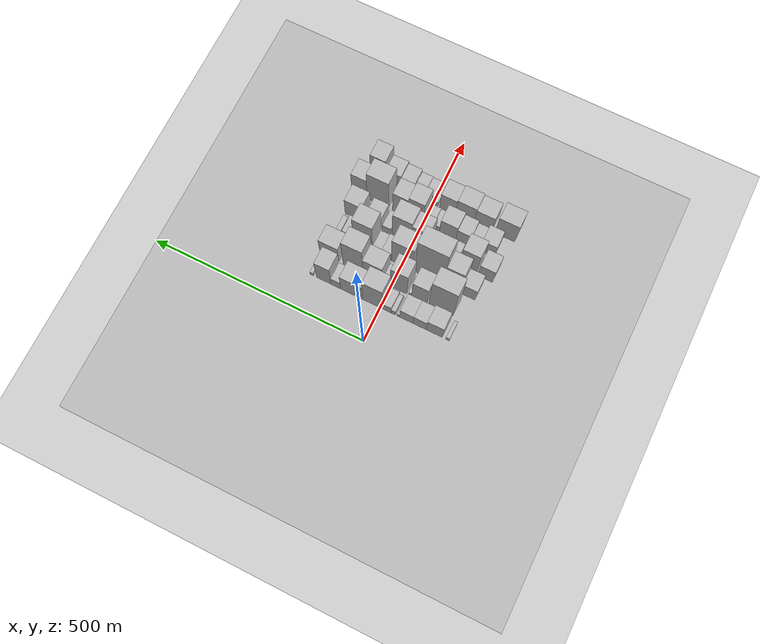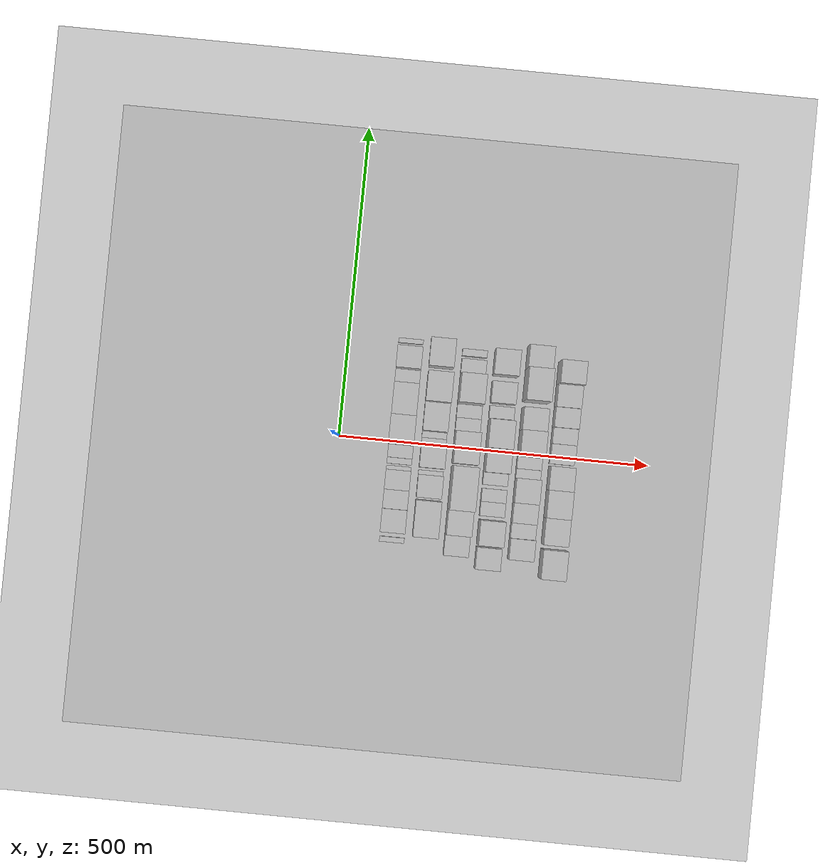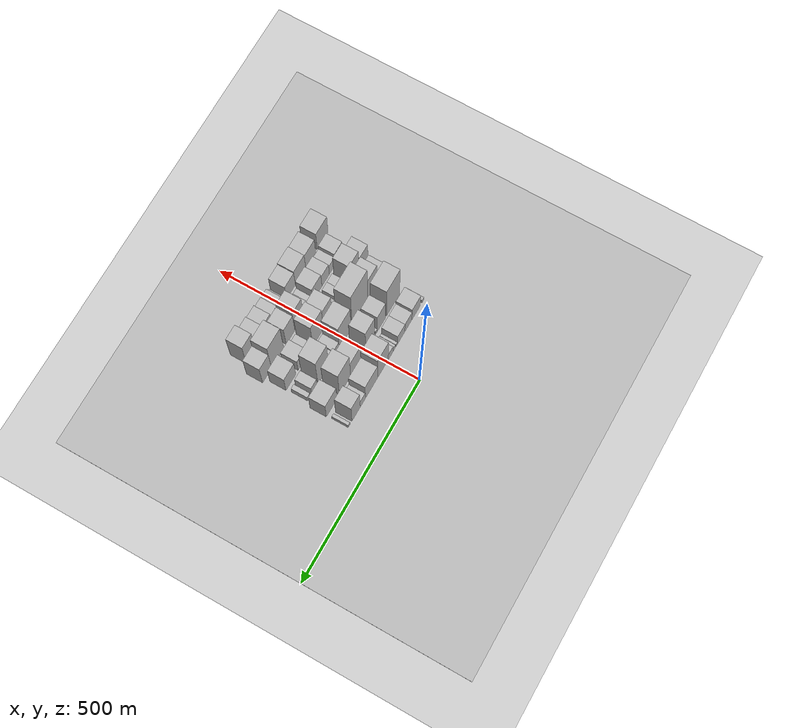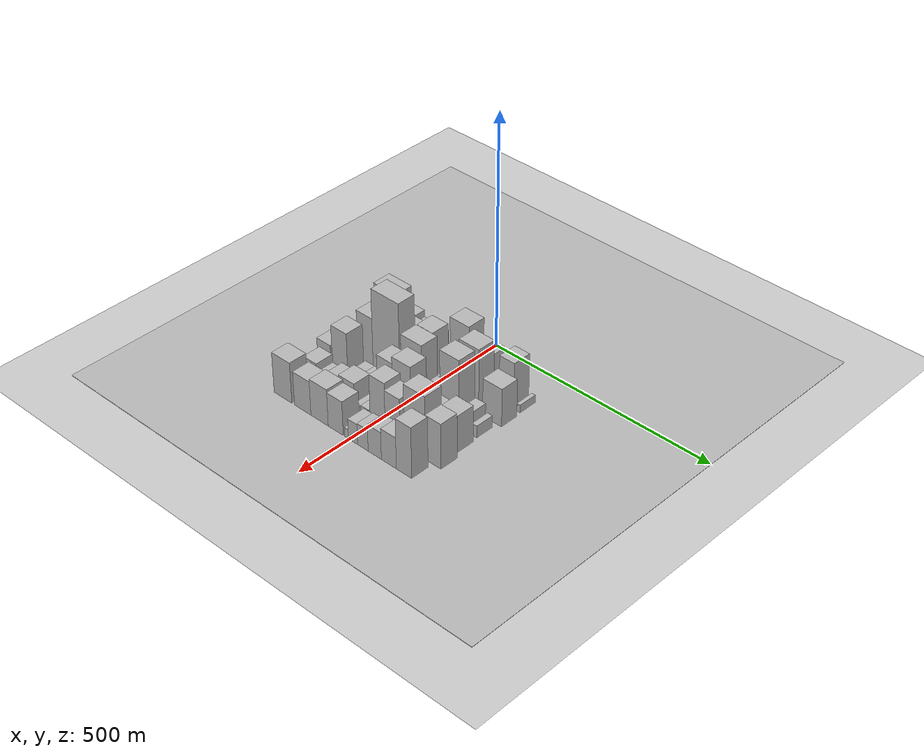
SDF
<sdf version="1.6">
 <world name="default">
  <include><name>ground_plane_1</name><uri>model://HANNAS_ground_plane</uri></include>
  <include>
   <name>ground_plane_2</name>
   <uri>model://HANNAS_ground_plane</uri>
   <pose>100 0 0  0 0 0</pose>
  </include>
  <model name="building_22">
   <static>1</static>
   <pose>100.0000 -157.7636 0 0.000000 0.000000 0.000000</pose>
   <link name="link">
    <pose>0 0 9.00 0 0 0</pose>
    <collision name="collision"><geometry><box><size>40.0000 8.4137 18.0000</size></box></geometry></collision>
    <visual name="visual">
     <cast_shadows>0</cast_shadows>
     <geometry><box><size>40.0000 8.4137 18.0000</size></box></geometry>
     <material>
      <script>
       <uri>model://HANNAS_wall/materials/scripts</uri>
       <uri>model://HANNAS_wall/materials/textures</uri>
       <name>vrc/HANNAS_wall</name>
      </script>
     </material>
    </visual>
   </link>
  </model>
  <model name="building_23">
   <static>1</static>
   <pose>100.0000 -126.8365 0 0.000000 0.000000 0.000000</pose>
   <link name="link">
    <pose>0 0 34.50 0 0 0</pose>
    <collision name="collision"><geometry><box><size>40.0000 37.4404 69.0000</size></box></geometry></collision>
    <visual name="visual">
     <cast_shadows>0</cast_shadows>
     <geometry><box><size>40.0000 37.4404 69.0000</size></box></geometry>
     <material>
      <script>
       <uri>model://HANNAS_wall/materials/scripts</uri>
       <uri>model://HANNAS_wall/materials/textures</uri>
       <name>vrc/HANNAS_wall</name>
      </script>
     </material>
    </visual>
   </link>
  </model>
  <model name="building_24">
   <static>1</static>
   <pose>100.0000 -92.8020 0 0.000000 0.000000 0.000000</pose>
   <link name="link">
    <pose>0 0 27.00 0 0 0</pose>
    <collision name="collision"><geometry><box><size>40.0000 30.6288 54.0000</size></box></geometry></collision>
    <visual name="visual">
     <cast_shadows>0</cast_shadows>
     <geometry><box><size>40.0000 30.6288 54.0000</size></box></geometry>
     <material>
      <script>
       <uri>model://HANNAS_wall/materials/scripts</uri>
       <uri>model://HANNAS_wall/materials/textures</uri>
       <name>vrc/HANNAS_wall</name>
      </script>
     </material>
    </visual>
   </link>
  </model>
  <model name="building_25">
   <static>1</static>
   <pose>100.0000 -61.5863 0 0.000000 0.000000 0.000000</pose>
   <link name="link">
    <pose>0 0 27.00 0 0 0</pose>
    <collision name="collision"><geometry><box><size>40.0000 31.8025 54.0000</size></box></geometry></collision>
    <visual name="visual">
     <cast_shadows>0</cast_shadows>
     <geometry><box><size>40.0000 31.8025 54.0000</size></box></geometry>
     <material>
      <script>
       <uri>model://HANNAS_wall/materials/scripts</uri>
       <uri>model://HANNAS_wall/materials/textures</uri>
       <name>vrc/HANNAS_wall</name>
      </script>
     </material>
    </visual>
   </link>
  </model>
  <model name="building_26">
   <static>1</static>
   <pose>100.0000 -42.3465 0 0.000000 0.000000 0.000000</pose>
   <link name="link">
    <pose>0 0 7.50 0 0 0</pose>
    <collision name="collision"><geometry><box><size>40.0000 6.6771 15.0000</size></box></geometry></collision>
    <visual name="visual">
     <cast_shadows>0</cast_shadows>
     <geometry><box><size>40.0000 6.6771 15.0000</size></box></geometry>
     <material>
      <script>
       <uri>model://HANNAS_wall/materials/scripts</uri>
       <uri>model://HANNAS_wall/materials/textures</uri>
       <name>vrc/HANNAS_wall</name>
      </script>
     </material>
    </visual>
   </link>
  </model>
  <model name="building_27">
   <static>1</static>
   <pose>100.0000 -31.0398 0 0.000000 0.000000 0.000000</pose>
   <link name="link">
    <pose>0 0 12.00 0 0 0</pose>
    <collision name="collision"><geometry><box><size>40.0000 9.9365 24.0000</size></box></geometry></collision>
    <visual name="visual">
     <cast_shadows>0</cast_shadows>
     <geometry><box><size>40.0000 9.9365 24.0000</size></box></geometry>
     <material>
      <script>
       <uri>model://HANNAS_wall/materials/scripts</uri>
       <uri>model://HANNAS_wall/materials/textures</uri>
       <name>vrc/HANNAS_wall</name>
      </script>
     </material>
    </visual>
   </link>
  </model>
  <model name="building_28">
   <static>1</static>
   <pose>100.0000 -15.5173 0 0.000000 0.000000 0.000000</pose>
   <link name="link">
    <pose>0 0 19.50 0 0 0</pose>
    <collision name="collision"><geometry><box><size>40.0000 21.1083 39.0000</size></box></geometry></collision>
    <visual name="visual">
     <cast_shadows>0</cast_shadows>
     <geometry><box><size>40.0000 21.1083 39.0000</size></box></geometry>
     <material>
      <script>
       <uri>model://HANNAS_wall/materials/scripts</uri>
       <uri>model://HANNAS_wall/materials/textures</uri>
       <name>vrc/HANNAS_wall</name>
      </script>
     </material>
    </visual>
   </link>
  </model>
  <model name="building_29">
   <static>1</static>
   <pose>100.0000 18.2256 0 0.000000 0.000000 0.000000</pose>
   <link name="link">
    <pose>0 0 63.00 0 0 0</pose>
    <collision name="collision"><geometry><box><size>40.0000 46.3776 126.0000</size></box></geometry></collision>
    <visual name="visual">
     <cast_shadows>0</cast_shadows>
     <geometry><box><size>40.0000 46.3776 126.0000</size></box></geometry>
     <material>
      <script>
       <uri>model://HANNAS_wall/materials/scripts</uri>
       <uri>model://HANNAS_wall/materials/textures</uri>
       <name>vrc/HANNAS_wall</name>
      </script>
     </material>
    </visual>
   </link>
  </model>
  <model name="building_30">
   <static>1</static>
   <pose>100.0000 67.4377 0 0.000000 0.000000 0.000000</pose>
   <link name="link">
    <pose>0 0 43.50 0 0 0</pose>
    <collision name="collision"><geometry><box><size>40.0000 52.0465 87.0000</size></box></geometry></collision>
    <visual name="visual">
     <cast_shadows>0</cast_shadows>
     <geometry><box><size>40.0000 52.0465 87.0000</size></box></geometry>
     <material>
      <script>
       <uri>model://HANNAS_wall/materials/scripts</uri>
       <uri>model://HANNAS_wall/materials/textures</uri>
       <name>vrc/HANNAS_wall</name>
      </script>
     </material>
    </visual>
   </link>
  </model>
  <model name="building_31">
   <static>1</static>
   <pose>100.0000 104.6148 0 0.000000 0.000000 0.000000</pose>
   <link name="link">
    <pose>0 0 21.00 0 0 0</pose>
    <collision name="collision"><geometry><box><size>40.0000 22.3077 42.0000</size></box></geometry></collision>
    <visual name="visual">
     <cast_shadows>0</cast_shadows>
     <geometry><box><size>40.0000 22.3077 42.0000</size></box></geometry>
     <material>
      <script>
       <uri>model://HANNAS_wall/materials/scripts</uri>
       <uri>model://HANNAS_wall/materials/textures</uri>
       <name>vrc/HANNAS_wall</name>
      </script>
     </material>
    </visual>
   </link>
  </model>
  <model name="building_32">
   <static>1</static>
   <pose>100.0000 133.3518 0 0.000000 0.000000 0.000000</pose>
   <link name="link">
    <pose>0 0 51.00 0 0 0</pose>
    <collision name="collision"><geometry><box><size>40.0000 35.1663 102.0000</size></box></geometry></collision>
    <visual name="visual">
     <cast_shadows>0</cast_shadows>
     <geometry><box><size>40.0000 35.1663 102.0000</size></box></geometry>
     <material>
      <script>
       <uri>model://HANNAS_wall/materials/scripts</uri>
       <uri>model://HANNAS_wall/materials/textures</uri>
       <name>vrc/HANNAS_wall</name>
      </script>
     </material>
    </visual>
   </link>
  </model>
  <model name="building_33">
   <static>1</static>
   <pose>100.0000 162.8169 0 0.000000 0.000000 0.000000</pose>
   <link name="link">
    <pose>0 0 9.00 0 0 0</pose>
    <collision name="collision"><geometry><box><size>40.0000 7.7639 18.0000</size></box></geometry></collision>
    <visual name="visual">
     <cast_shadows>0</cast_shadows>
     <geometry><box><size>40.0000 7.7639 18.0000</size></box></geometry>
     <material>
      <script>
       <uri>model://HANNAS_wall/materials/scripts</uri>
       <uri>model://HANNAS_wall/materials/textures</uri>
       <name>vrc/HANNAS_wall</name>
      </script>
     </material>
    </visual>
   </link>
  </model>
  <model name="building_72">
   <static>1</static>
   <pose>152.0000 -117.4777 0 0.000000 0.000000 0.000000</pose>
   <link name="link">
    <pose>0 0 79.50 0 0 0</pose>
    <collision name="collision"><geometry><box><size>40.0000 57.0901 159.0000</size></box></geometry></collision>
    <visual name="visual">
     <cast_shadows>0</cast_shadows>
     <geometry><box><size>40.0000 57.0901 159.0000</size></box></geometry>
     <material>
      <script>
       <uri>model://HANNAS_wall/materials/scripts</uri>
       <uri>model://HANNAS_wall/materials/textures</uri>
       <name>vrc/HANNAS_wall</name>
      </script>
     </material>
    </visual>
   </link>
  </model>
  <model name="building_73">
   <static>1</static>
   <pose>152.0000 -66.9341 0 0.000000 0.000000 0.000000</pose>
   <link name="link">
    <pose>0 0 48.00 0 0 0</pose>
    <collision name="collision"><geometry><box><size>40.0000 35.9970 96.0000</size></box></geometry></collision>
    <visual name="visual">
     <cast_shadows>0</cast_shadows>
     <geometry><box><size>40.0000 35.9970 96.0000</size></box></geometry>
     <material>
      <script>
       <uri>model://HANNAS_wall/materials/scripts</uri>
       <uri>model://HANNAS_wall/materials/textures</uri>
       <name>vrc/HANNAS_wall</name>
      </script>
     </material>
    </visual>
   </link>
  </model>
  <model name="building_74">
   <static>1</static>
   <pose>152.0000 -45.2535 0 0.000000 0.000000 0.000000</pose>
   <link name="link">
    <pose>0 0 9.00 0 0 0</pose>
    <collision name="collision"><geometry><box><size>40.0000 7.3643 18.0000</size></box></geometry></collision>
    <visual name="visual">
     <cast_shadows>0</cast_shadows>
     <geometry><box><size>40.0000 7.3643 18.0000</size></box></geometry>
     <material>
      <script>
       <uri>model://HANNAS_wall/materials/scripts</uri>
       <uri>model://HANNAS_wall/materials/textures</uri>
       <name>vrc/HANNAS_wall</name>
      </script>
     </material>
    </visual>
   </link>
  </model>
  <model name="building_75">
   <static>1</static>
   <pose>152.0000 -18.0005 0 0.000000 0.000000 0.000000</pose>
   <link name="link">
    <pose>0 0 60.00 0 0 0</pose>
    <collision name="collision"><geometry><box><size>40.0000 39.1418 120.0000</size></box></geometry></collision>
    <visual name="visual">
     <cast_shadows>0</cast_shadows>
     <geometry><box><size>40.0000 39.1418 120.0000</size></box></geometry>
     <material>
      <script>
       <uri>model://HANNAS_wall/materials/scripts</uri>
       <uri>model://HANNAS_wall/materials/textures</uri>
       <name>vrc/HANNAS_wall</name>
      </script>
     </material>
    </visual>
   </link>
  </model>
  <model name="building_76">
   <static>1</static>
   <pose>152.0000 6.0870 0 0.000000 0.000000 0.000000</pose>
   <link name="link">
    <pose>0 0 10.50 0 0 0</pose>
    <collision name="collision"><geometry><box><size>40.0000 9.0332 21.0000</size></box></geometry></collision>
    <visual name="visual">
     <cast_shadows>0</cast_shadows>
     <geometry><box><size>40.0000 9.0332 21.0000</size></box></geometry>
     <material>
      <script>
       <uri>model://HANNAS_wall/materials/scripts</uri>
       <uri>model://HANNAS_wall/materials/textures</uri>
       <name>vrc/HANNAS_wall</name>
      </script>
     </material>
    </visual>
   </link>
  </model>
  <model name="building_77">
   <static>1</static>
   <pose>152.0000 15.8207 0 0.000000 0.000000 0.000000</pose>
   <link name="link">
    <pose>0 0 10.50 0 0 0</pose>
    <collision name="collision"><geometry><box><size>40.0000 10.4344 21.0000</size></box></geometry></collision>
    <visual name="visual">
     <cast_shadows>0</cast_shadows>
     <geometry><box><size>40.0000 10.4344 21.0000</size></box></geometry>
     <material>
      <script>
       <uri>model://HANNAS_wall/materials/scripts</uri>
       <uri>model://HANNAS_wall/materials/textures</uri>
       <name>vrc/HANNAS_wall</name>
      </script>
     </material>
    </visual>
   </link>
  </model>
  <model name="building_78">
   <static>1</static>
   <pose>152.0000 43.8010 0 0.000000 0.000000 0.000000</pose>
   <link name="link">
    <pose>0 0 45.00 0 0 0</pose>
    <collision name="collision"><geometry><box><size>40.0000 45.5261 90.0000</size></box></geometry></collision>
    <visual name="visual">
     <cast_shadows>0</cast_shadows>
     <geometry><box><size>40.0000 45.5261 90.0000</size></box></geometry>
     <material>
      <script>
       <uri>model://HANNAS_wall/materials/scripts</uri>
       <uri>model://HANNAS_wall/materials/textures</uri>
       <name>vrc/HANNAS_wall</name>
      </script>
     </material>
    </visual>
   </link>
  </model>
  <model name="building_79">
   <static>1</static>
   <pose>152.0000 90.3240 0 0.000000 0.000000 0.000000</pose>
   <link name="link">
    <pose>0 0 70.50 0 0 0</pose>
    <collision name="collision"><geometry><box><size>40.0000 47.5198 141.0000</size></box></geometry></collision>
    <visual name="visual">
     <cast_shadows>0</cast_shadows>
     <geometry><box><size>40.0000 47.5198 141.0000</size></box></geometry>
     <material>
      <script>
       <uri>model://HANNAS_wall/materials/scripts</uri>
       <uri>model://HANNAS_wall/materials/textures</uri>
       <name>vrc/HANNAS_wall</name>
      </script>
     </material>
    </visual>
   </link>
  </model>
  <model name="building_80">
   <static>1</static>
   <pose>152.0000 146.7472 0 0.000000 0.000000 0.000000</pose>
   <link name="link">
    <pose>0 0 42.00 0 0 0</pose>
    <collision name="collision"><geometry><box><size>40.0000 45.3268 84.0000</size></box></geometry></collision>
    <visual name="visual">
     <cast_shadows>0</cast_shadows>
     <geometry><box><size>40.0000 45.3268 84.0000</size></box></geometry>
     <material>
      <script>
       <uri>model://HANNAS_wall/materials/scripts</uri>
       <uri>model://HANNAS_wall/materials/textures</uri>
       <name>vrc/HANNAS_wall</name>
      </script>
     </material>
    </visual>
   </link>
  </model>
  <model name="building_122">
   <static>1</static>
   <pose>204.0000 -156.0463 0 0.000000 0.000000 0.000000</pose>
   <link name="link">
    <pose>0 0 31.50 0 0 0</pose>
    <collision name="collision"><geometry><box><size>40.0000 34.0928 63.0000</size></box></geometry></collision>
    <visual name="visual">
     <cast_shadows>0</cast_shadows>
     <geometry><box><size>40.0000 34.0928 63.0000</size></box></geometry>
     <material>
      <script>
       <uri>model://HANNAS_wall/materials/scripts</uri>
       <uri>model://HANNAS_wall/materials/textures</uri>
       <name>vrc/HANNAS_wall</name>
      </script>
     </material>
    </visual>
   </link>
  </model>
  <model name="building_123">
   <static>1</static>
   <pose>204.0000 -118.9184 0 0.000000 0.000000 0.000000</pose>
   <link name="link">
    <pose>0 0 64.50 0 0 0</pose>
    <collision name="collision"><geometry><box><size>40.0000 40.1630 129.0000</size></box></geometry></collision>
    <visual name="visual">
     <cast_shadows>0</cast_shadows>
     <geometry><box><size>40.0000 40.1630 129.0000</size></box></geometry>
     <material>
      <script>
       <uri>model://HANNAS_wall/materials/scripts</uri>
       <uri>model://HANNAS_wall/materials/textures</uri>
       <name>vrc/HANNAS_wall</name>
      </script>
     </material>
    </visual>
   </link>
  </model>
  <model name="building_124">
   <static>1</static>
   <pose>204.0000 -64.6511 0 0.000000 0.000000 0.000000</pose>
   <link name="link">
    <pose>0 0 97.50 0 0 0</pose>
    <collision name="collision"><geometry><box><size>40.0000 68.3717 195.0000</size></box></geometry></collision>
    <visual name="visual">
     <cast_shadows>0</cast_shadows>
     <geometry><box><size>40.0000 68.3717 195.0000</size></box></geometry>
     <material>
      <script>
       <uri>model://HANNAS_wall/materials/scripts</uri>
       <uri>model://HANNAS_wall/materials/textures</uri>
       <name>vrc/HANNAS_wall</name>
      </script>
     </material>
    </visual>
   </link>
  </model>
  <model name="building_125">
   <static>1</static>
   <pose>204.0000 -0.8759 0 0.000000 0.000000 0.000000</pose>
   <link name="link">
    <pose>0 0 66.00 0 0 0</pose>
    <collision name="collision"><geometry><box><size>40.0000 51.1786 132.0000</size></box></geometry></collision>
    <visual name="visual">
     <cast_shadows>0</cast_shadows>
     <geometry><box><size>40.0000 51.1786 132.0000</size></box></geometry>
     <material>
      <script>
       <uri>model://HANNAS_wall/materials/scripts</uri>
       <uri>model://HANNAS_wall/materials/textures</uri>
       <name>vrc/HANNAS_wall</name>
      </script>
     </material>
    </visual>
   </link>
  </model>
  <model name="building_126">
   <static>1</static>
   <pose>204.0000 36.0322 0 0.000000 0.000000 0.000000</pose>
   <link name="link">
    <pose>0 0 22.50 0 0 0</pose>
    <collision name="collision"><geometry><box><size>40.0000 22.6376 45.0000</size></box></geometry></collision>
    <visual name="visual">
     <cast_shadows>0</cast_shadows>
     <geometry><box><size>40.0000 22.6376 45.0000</size></box></geometry>
     <material>
      <script>
       <uri>model://HANNAS_wall/materials/scripts</uri>
       <uri>model://HANNAS_wall/materials/textures</uri>
       <name>vrc/HANNAS_wall</name>
      </script>
     </material>
    </visual>
   </link>
  </model>
  <model name="building_127">
   <static>1</static>
   <pose>204.0000 58.3039 0 0.000000 0.000000 0.000000</pose>
   <link name="link">
    <pose>0 0 19.50 0 0 0</pose>
    <collision name="collision"><geometry><box><size>40.0000 21.9056 39.0000</size></box></geometry></collision>
    <visual name="visual">
     <cast_shadows>0</cast_shadows>
     <geometry><box><size>40.0000 21.9056 39.0000</size></box></geometry>
     <material>
      <script>
       <uri>model://HANNAS_wall/materials/scripts</uri>
       <uri>model://HANNAS_wall/materials/textures</uri>
       <name>vrc/HANNAS_wall</name>
      </script>
     </material>
    </visual>
   </link>
  </model>
  <model name="building_128">
   <static>1</static>
   <pose>204.0000 92.4155 0 0.000000 0.000000 0.000000</pose>
   <link name="link">
    <pose>0 0 73.50 0 0 0</pose>
    <collision name="collision"><geometry><box><size>40.0000 46.3177 147.0000</size></box></geometry></collision>
    <visual name="visual">
     <cast_shadows>0</cast_shadows>
     <geometry><box><size>40.0000 46.3177 147.0000</size></box></geometry>
     <material>
      <script>
       <uri>model://HANNAS_wall/materials/scripts</uri>
       <uri>model://HANNAS_wall/materials/textures</uri>
       <name>vrc/HANNAS_wall</name>
      </script>
     </material>
    </visual>
   </link>
  </model>
  <model name="building_129">
   <static>1</static>
   <pose>204.0000 130.3611 0 0.000000 0.000000 0.000000</pose>
   <link name="link">
    <pose>0 0 22.50 0 0 0</pose>
    <collision name="collision"><geometry><box><size>40.0000 23.5734 45.0000</size></box></geometry></collision>
    <visual name="visual">
     <cast_shadows>0</cast_shadows>
     <geometry><box><size>40.0000 23.5734 45.0000</size></box></geometry>
     <material>
      <script>
       <uri>model://HANNAS_wall/materials/scripts</uri>
       <uri>model://HANNAS_wall/materials/textures</uri>
       <name>vrc/HANNAS_wall</name>
      </script>
     </material>
    </visual>
   </link>
  </model>
  <model name="building_130">
   <static>1</static>
   <pose>204.0000 152.9882 0 0.000000 0.000000 0.000000</pose>
   <link name="link">
    <pose>0 0 13.50 0 0 0</pose>
    <collision name="collision"><geometry><box><size>40.0000 11.6809 27.0000</size></box></geometry></collision>
    <visual name="visual">
     <cast_shadows>0</cast_shadows>
     <geometry><box><size>40.0000 11.6809 27.0000</size></box></geometry>
     <material>
      <script>
       <uri>model://HANNAS_wall/materials/scripts</uri>
       <uri>model://HANNAS_wall/materials/textures</uri>
       <name>vrc/HANNAS_wall</name>
      </script>
     </material>
    </visual>
   </link>
  </model>
  <model name="building_167">
   <static>1</static>
   <pose>256.0000 -172.4976 0 0.000000 0.000000 0.000000</pose>
   <link name="link">
    <pose>0 0 34.50 0 0 0</pose>
    <collision name="collision"><geometry><box><size>40.0000 35.1770 69.0000</size></box></geometry></collision>
    <visual name="visual">
     <cast_shadows>0</cast_shadows>
     <geometry><box><size>40.0000 35.1770 69.0000</size></box></geometry>
     <material>
      <script>
       <uri>model://HANNAS_wall/materials/scripts</uri>
       <uri>model://HANNAS_wall/materials/textures</uri>
       <name>vrc/HANNAS_wall</name>
      </script>
     </material>
    </visual>
   </link>
  </model>
  <model name="building_168">
   <static>1</static>
   <pose>256.0000 -131.0189 0 0.000000 0.000000 0.000000</pose>
   <link name="link">
    <pose>0 0 58.50 0 0 0</pose>
    <collision name="collision"><geometry><box><size>40.0000 39.7805 117.0000</size></box></geometry></collision>
    <visual name="visual">
     <cast_shadows>0</cast_shadows>
     <geometry><box><size>40.0000 39.7805 117.0000</size></box></geometry>
     <material>
      <script>
       <uri>model://HANNAS_wall/materials/scripts</uri>
       <uri>model://HANNAS_wall/materials/textures</uri>
       <name>vrc/HANNAS_wall</name>
      </script>
     </material>
    </visual>
   </link>
  </model>
  <model name="building_169">
   <static>1</static>
   <pose>256.0000 -93.6897 0 0.000000 0.000000 0.000000</pose>
   <link name="link">
    <pose>0 0 19.50 0 0 0</pose>
    <collision name="collision"><geometry><box><size>40.0000 22.8780 39.0000</size></box></geometry></collision>
    <visual name="visual">
     <cast_shadows>0</cast_shadows>
     <geometry><box><size>40.0000 22.8780 39.0000</size></box></geometry>
     <material>
      <script>
       <uri>model://HANNAS_wall/materials/scripts</uri>
       <uri>model://HANNAS_wall/materials/textures</uri>
       <name>vrc/HANNAS_wall</name>
      </script>
     </material>
    </visual>
   </link>
  </model>
  <model name="building_170">
   <static>1</static>
   <pose>256.0000 -71.7061 0 0.000000 0.000000 0.000000</pose>
   <link name="link">
    <pose>0 0 19.50 0 0 0</pose>
    <collision name="collision"><geometry><box><size>40.0000 21.0891 39.0000</size></box></geometry></collision>
    <visual name="visual">
     <cast_shadows>0</cast_shadows>
     <geometry><box><size>40.0000 21.0891 39.0000</size></box></geometry>
     <material>
      <script>
       <uri>model://HANNAS_wall/materials/scripts</uri>
       <uri>model://HANNAS_wall/materials/textures</uri>
       <name>vrc/HANNAS_wall</name>
      </script>
     </material>
    </visual>
   </link>
  </model>
  <model name="building_171">
   <static>1</static>
   <pose>256.0000 -45.2088 0 0.000000 0.000000 0.000000</pose>
   <link name="link">
    <pose>0 0 19.50 0 0 0</pose>
    <collision name="collision"><geometry><box><size>40.0000 19.9056 39.0000</size></box></geometry></collision>
    <visual name="visual">
     <cast_shadows>0</cast_shadows>
     <geometry><box><size>40.0000 19.9056 39.0000</size></box></geometry>
     <material>
      <script>
       <uri>model://HANNAS_wall/materials/scripts</uri>
       <uri>model://HANNAS_wall/materials/textures</uri>
       <name>vrc/HANNAS_wall</name>
      </script>
     </material>
    </visual>
   </link>
  </model>
  <model name="building_172">
   <static>1</static>
   <pose>256.0000 -16.0534 0 0.000000 0.000000 0.000000</pose>
   <link name="link">
    <pose>0 0 55.50 0 0 0</pose>
    <collision name="collision"><geometry><box><size>40.0000 38.4051 111.0000</size></box></geometry></collision>
    <visual name="visual">
     <cast_shadows>0</cast_shadows>
     <geometry><box><size>40.0000 38.4051 111.0000</size></box></geometry>
     <material>
      <script>
       <uri>model://HANNAS_wall/materials/scripts</uri>
       <uri>model://HANNAS_wall/materials/textures</uri>
       <name>vrc/HANNAS_wall</name>
      </script>
     </material>
    </visual>
   </link>
  </model>
  <model name="building_173">
   <static>1</static>
   <pose>256.0000 25.8198 0 0.000000 0.000000 0.000000</pose>
   <link name="link">
    <pose>0 0 63.00 0 0 0</pose>
    <collision name="collision"><geometry><box><size>40.0000 45.3413 126.0000</size></box></geometry></collision>
    <visual name="visual">
     <cast_shadows>0</cast_shadows>
     <geometry><box><size>40.0000 45.3413 126.0000</size></box></geometry>
     <material>
      <script>
       <uri>model://HANNAS_wall/materials/scripts</uri>
       <uri>model://HANNAS_wall/materials/textures</uri>
       <name>vrc/HANNAS_wall</name>
      </script>
     </material>
    </visual>
   </link>
  </model>
  <model name="building_174">
   <static>1</static>
   <pose>256.0000 61.6459 0 0.000000 0.000000 0.000000</pose>
   <link name="link">
    <pose>0 0 18.00 0 0 0</pose>
    <collision name="collision"><geometry><box><size>40.0000 20.3110 36.0000</size></box></geometry></collision>
    <visual name="visual">
     <cast_shadows>0</cast_shadows>
     <geometry><box><size>40.0000 20.3110 36.0000</size></box></geometry>
     <material>
      <script>
       <uri>model://HANNAS_wall/materials/scripts</uri>
       <uri>model://HANNAS_wall/materials/textures</uri>
       <name>vrc/HANNAS_wall</name>
      </script>
     </material>
    </visual>
   </link>
  </model>
  <model name="building_175">
   <static>1</static>
   <pose>256.0000 93.1978 0 0.000000 0.000000 0.000000</pose>
   <link name="link">
    <pose>0 0 31.50 0 0 0</pose>
    <collision name="collision"><geometry><box><size>40.0000 34.7926 63.0000</size></box></geometry></collision>
    <visual name="visual">
     <cast_shadows>0</cast_shadows>
     <geometry><box><size>40.0000 34.7926 63.0000</size></box></geometry>
     <material>
      <script>
       <uri>model://HANNAS_wall/materials/scripts</uri>
       <uri>model://HANNAS_wall/materials/textures</uri>
       <name>vrc/HANNAS_wall</name>
      </script>
     </material>
    </visual>
   </link>
  </model>
  <model name="building_176">
   <static>1</static>
   <pose>256.0000 141.1529 0 0.000000 0.000000 0.000000</pose>
   <link name="link">
    <pose>0 0 40.50 0 0 0</pose>
    <collision name="collision"><geometry><box><size>40.0000 41.1177 81.0000</size></box></geometry></collision>
    <visual name="visual">
     <cast_shadows>0</cast_shadows>
     <geometry><box><size>40.0000 41.1177 81.0000</size></box></geometry>
     <material>
      <script>
       <uri>model://HANNAS_wall/materials/scripts</uri>
       <uri>model://HANNAS_wall/materials/textures</uri>
       <name>vrc/HANNAS_wall</name>
      </script>
     </material>
    </visual>
   </link>
  </model>
  <model name="building_222">
   <static>1</static>
   <pose>308.0000 -152.9794 0 0.000000 0.000000 0.000000</pose>
   <link name="link">
    <pose>0 0 33.00 0 0 0</pose>
    <collision name="collision"><geometry><box><size>40.0000 33.8711 66.0000</size></box></geometry></collision>
    <visual name="visual">
     <cast_shadows>0</cast_shadows>
     <geometry><box><size>40.0000 33.8711 66.0000</size></box></geometry>
     <material>
      <script>
       <uri>model://HANNAS_wall/materials/scripts</uri>
       <uri>model://HANNAS_wall/materials/textures</uri>
       <name>vrc/HANNAS_wall</name>
      </script>
     </material>
    </visual>
   </link>
  </model>
  <model name="building_223">
   <static>1</static>
   <pose>308.0000 -123.7557 0 0.000000 0.000000 0.000000</pose>
   <link name="link">
    <pose>0 0 24.00 0 0 0</pose>
    <collision name="collision"><geometry><box><size>40.0000 24.5764 48.0000</size></box></geometry></collision>
    <visual name="visual">
     <cast_shadows>0</cast_shadows>
     <geometry><box><size>40.0000 24.5764 48.0000</size></box></geometry>
     <material>
      <script>
       <uri>model://HANNAS_wall/materials/scripts</uri>
       <uri>model://HANNAS_wall/materials/textures</uri>
       <name>vrc/HANNAS_wall</name>
      </script>
     </material>
    </visual>
   </link>
  </model>
  <model name="building_224">
   <static>1</static>
   <pose>308.0000 -95.3647 0 0.000000 0.000000 0.000000</pose>
   <link name="link">
    <pose>0 0 30.00 0 0 0</pose>
    <collision name="collision"><geometry><box><size>40.0000 32.2055 60.0000</size></box></geometry></collision>
    <visual name="visual">
     <cast_shadows>0</cast_shadows>
     <geometry><box><size>40.0000 32.2055 60.0000</size></box></geometry>
     <material>
      <script>
       <uri>model://HANNAS_wall/materials/scripts</uri>
       <uri>model://HANNAS_wall/materials/textures</uri>
       <name>vrc/HANNAS_wall</name>
      </script>
     </material>
    </visual>
   </link>
  </model>
  <model name="building_225">
   <static>1</static>
   <pose>308.0000 -59.5458 0 0.000000 0.000000 0.000000</pose>
   <link name="link">
    <pose>0 0 36.00 0 0 0</pose>
    <collision name="collision"><geometry><box><size>40.0000 39.4323 72.0000</size></box></geometry></collision>
    <visual name="visual">
     <cast_shadows>0</cast_shadows>
     <geometry><box><size>40.0000 39.4323 72.0000</size></box></geometry>
     <material>
      <script>
       <uri>model://HANNAS_wall/materials/scripts</uri>
       <uri>model://HANNAS_wall/materials/textures</uri>
       <name>vrc/HANNAS_wall</name>
      </script>
     </material>
    </visual>
   </link>
  </model>
  <model name="building_226">
   <static>1</static>
   <pose>308.0000 -32.1934 0 0.000000 0.000000 0.000000</pose>
   <link name="link">
    <pose>0 0 15.00 0 0 0</pose>
    <collision name="collision"><geometry><box><size>40.0000 15.2726 30.0000</size></box></geometry></collision>
    <visual name="visual">
     <cast_shadows>0</cast_shadows>
     <geometry><box><size>40.0000 15.2726 30.0000</size></box></geometry>
     <material>
      <script>
       <uri>model://HANNAS_wall/materials/scripts</uri>
       <uri>model://HANNAS_wall/materials/textures</uri>
       <name>vrc/HANNAS_wall</name>
      </script>
     </material>
    </visual>
   </link>
  </model>
  <model name="building_227">
   <static>1</static>
   <pose>308.0000 -14.6620 0 0.000000 0.000000 0.000000</pose>
   <link name="link">
    <pose>0 0 16.50 0 0 0</pose>
    <collision name="collision"><geometry><box><size>40.0000 19.7901 33.0000</size></box></geometry></collision>
    <visual name="visual">
     <cast_shadows>0</cast_shadows>
     <geometry><box><size>40.0000 19.7901 33.0000</size></box></geometry>
     <material>
      <script>
       <uri>model://HANNAS_wall/materials/scripts</uri>
       <uri>model://HANNAS_wall/materials/textures</uri>
       <name>vrc/HANNAS_wall</name>
      </script>
     </material>
    </visual>
   </link>
  </model>
  <model name="building_228">
   <static>1</static>
   <pose>308.0000 17.9494 0 0.000000 0.000000 0.000000</pose>
   <link name="link">
    <pose>0 0 57.00 0 0 0</pose>
    <collision name="collision"><geometry><box><size>40.0000 37.4327 114.0000</size></box></geometry></collision>
    <visual name="visual">
     <cast_shadows>0</cast_shadows>
     <geometry><box><size>40.0000 37.4327 114.0000</size></box></geometry>
     <material>
      <script>
       <uri>model://HANNAS_wall/materials/scripts</uri>
       <uri>model://HANNAS_wall/materials/textures</uri>
       <name>vrc/HANNAS_wall</name>
      </script>
     </material>
    </visual>
   </link>
  </model>
  <model name="building_229">
   <static>1</static>
   <pose>308.0000 54.9011 0 0.000000 0.000000 0.000000</pose>
   <link name="link">
    <pose>0 0 49.50 0 0 0</pose>
    <collision name="collision"><geometry><box><size>40.0000 36.4708 99.0000</size></box></geometry></collision>
    <visual name="visual">
     <cast_shadows>0</cast_shadows>
     <geometry><box><size>40.0000 36.4708 99.0000</size></box></geometry>
     <material>
      <script>
       <uri>model://HANNAS_wall/materials/scripts</uri>
       <uri>model://HANNAS_wall/materials/textures</uri>
       <name>vrc/HANNAS_wall</name>
      </script>
     </material>
    </visual>
   </link>
  </model>
  <model name="building_230">
   <static>1</static>
   <pose>308.0000 108.9626 0 0.000000 0.000000 0.000000</pose>
   <link name="link">
    <pose>0 0 69.00 0 0 0</pose>
    <collision name="collision"><geometry><box><size>40.0000 51.6521 138.0000</size></box></geometry></collision>
    <visual name="visual">
     <cast_shadows>0</cast_shadows>
     <geometry><box><size>40.0000 51.6521 138.0000</size></box></geometry>
     <material>
      <script>
       <uri>model://HANNAS_wall/materials/scripts</uri>
       <uri>model://HANNAS_wall/materials/textures</uri>
       <name>vrc/HANNAS_wall</name>
      </script>
     </material>
    </visual>
   </link>
  </model>
  <model name="building_231">
   <static>1</static>
   <pose>308.0000 153.2929 0 0.000000 0.000000 0.000000</pose>
   <link name="link">
    <pose>0 0 49.50 0 0 0</pose>
    <collision name="collision"><geometry><box><size>40.0000 37.0085 99.0000</size></box></geometry></collision>
    <visual name="visual">
     <cast_shadows>0</cast_shadows>
     <geometry><box><size>40.0000 37.0085 99.0000</size></box></geometry>
     <material>
      <script>
       <uri>model://HANNAS_wall/materials/scripts</uri>
       <uri>model://HANNAS_wall/materials/textures</uri>
       <name>vrc/HANNAS_wall</name>
      </script>
     </material>
    </visual>
   </link>
  </model>
  <model name="building_268">
   <static>1</static>
   <pose>360.0000 -171.6683 0 0.000000 0.000000 0.000000</pose>
   <link name="link">
    <pose>0 0 45.00 0 0 0</pose>
    <collision name="collision"><geometry><box><size>40.0000 46.9002 90.0000</size></box></geometry></collision>
    <visual name="visual">
     <cast_shadows>0</cast_shadows>
     <geometry><box><size>40.0000 46.9002 90.0000</size></box></geometry>
     <material>
      <script>
       <uri>model://HANNAS_wall/materials/scripts</uri>
       <uri>model://HANNAS_wall/materials/textures</uri>
       <name>vrc/HANNAS_wall</name>
      </script>
     </material>
    </visual>
   </link>
  </model>
  <model name="building_269">
   <static>1</static>
   <pose>360.0000 -119.7595 0 0.000000 0.000000 0.000000</pose>
   <link name="link">
    <pose>0 0 37.50 0 0 0</pose>
    <collision name="collision"><geometry><box><size>40.0000 42.9175 75.0000</size></box></geometry></collision>
    <visual name="visual">
     <cast_shadows>0</cast_shadows>
     <geometry><box><size>40.0000 42.9175 75.0000</size></box></geometry>
     <material>
      <script>
       <uri>model://HANNAS_wall/materials/scripts</uri>
       <uri>model://HANNAS_wall/materials/textures</uri>
       <name>vrc/HANNAS_wall</name>
      </script>
     </material>
    </visual>
   </link>
  </model>
  <model name="building_270">
   <static>1</static>
   <pose>360.0000 -76.0812 0 0.000000 0.000000 0.000000</pose>
   <link name="link">
    <pose>0 0 40.50 0 0 0</pose>
    <collision name="collision"><geometry><box><size>40.0000 44.4391 81.0000</size></box></geometry></collision>
    <visual name="visual">
     <cast_shadows>0</cast_shadows>
     <geometry><box><size>40.0000 44.4391 81.0000</size></box></geometry>
     <material>
      <script>
       <uri>model://HANNAS_wall/materials/scripts</uri>
       <uri>model://HANNAS_wall/materials/textures</uri>
       <name>vrc/HANNAS_wall</name>
      </script>
     </material>
    </visual>
   </link>
  </model>
  <model name="building_271">
   <static>1</static>
   <pose>360.0000 -34.8014 0 0.000000 0.000000 0.000000</pose>
   <link name="link">
    <pose>0 0 37.50 0 0 0</pose>
    <collision name="collision"><geometry><box><size>40.0000 38.1204 75.0000</size></box></geometry></collision>
    <visual name="visual">
     <cast_shadows>0</cast_shadows>
     <geometry><box><size>40.0000 38.1204 75.0000</size></box></geometry>
     <material>
      <script>
       <uri>model://HANNAS_wall/materials/scripts</uri>
       <uri>model://HANNAS_wall/materials/textures</uri>
       <name>vrc/HANNAS_wall</name>
      </script>
     </material>
    </visual>
   </link>
  </model>
  <model name="building_272">
   <static>1</static>
   <pose>360.0000 -7.2113 0 0.000000 0.000000 0.000000</pose>
   <link name="link">
    <pose>0 0 10.50 0 0 0</pose>
    <collision name="collision"><geometry><box><size>40.0000 9.0598 21.0000</size></box></geometry></collision>
    <visual name="visual">
     <cast_shadows>0</cast_shadows>
     <geometry><box><size>40.0000 9.0598 21.0000</size></box></geometry>
     <material>
      <script>
       <uri>model://HANNAS_wall/materials/scripts</uri>
       <uri>model://HANNAS_wall/materials/textures</uri>
       <name>vrc/HANNAS_wall</name>
      </script>
     </material>
    </visual>
   </link>
  </model>
  <model name="building_273">
   <static>1</static>
   <pose>360.0000 8.8216 0 0.000000 0.000000 0.000000</pose>
   <link name="link">
    <pose>0 0 22.50 0 0 0</pose>
    <collision name="collision"><geometry><box><size>40.0000 23.0061 45.0000</size></box></geometry></collision>
    <visual name="visual">
     <cast_shadows>0</cast_shadows>
     <geometry><box><size>40.0000 23.0061 45.0000</size></box></geometry>
     <material>
      <script>
       <uri>model://HANNAS_wall/materials/scripts</uri>
       <uri>model://HANNAS_wall/materials/textures</uri>
       <name>vrc/HANNAS_wall</name>
      </script>
     </material>
    </visual>
   </link>
  </model>
  <model name="building_274">
   <static>1</static>
   <pose>360.0000 33.4522 0 0.000000 0.000000 0.000000</pose>
   <link name="link">
    <pose>0 0 24.00 0 0 0</pose>
    <collision name="collision"><geometry><box><size>40.0000 26.2551 48.0000</size></box></geometry></collision>
    <visual name="visual">
     <cast_shadows>0</cast_shadows>
     <geometry><box><size>40.0000 26.2551 48.0000</size></box></geometry>
     <material>
      <script>
       <uri>model://HANNAS_wall/materials/scripts</uri>
       <uri>model://HANNAS_wall/materials/textures</uri>
       <name>vrc/HANNAS_wall</name>
      </script>
     </material>
    </visual>
   </link>
  </model>
  <model name="building_275">
   <static>1</static>
   <pose>360.0000 62.8151 0 0.000000 0.000000 0.000000</pose>
   <link name="link">
    <pose>0 0 30.00 0 0 0</pose>
    <collision name="collision"><geometry><box><size>40.0000 32.4705 60.0000</size></box></geometry></collision>
    <visual name="visual">
     <cast_shadows>0</cast_shadows>
     <geometry><box><size>40.0000 32.4705 60.0000</size></box></geometry>
     <material>
      <script>
       <uri>model://HANNAS_wall/materials/scripts</uri>
       <uri>model://HANNAS_wall/materials/textures</uri>
       <name>vrc/HANNAS_wall</name>
      </script>
     </material>
    </visual>
   </link>
  </model>
  <model name="building_276">
   <static>1</static>
   <pose>360.0000 97.2331 0 0.000000 0.000000 0.000000</pose>
   <link name="link">
    <pose>0 0 34.50 0 0 0</pose>
    <collision name="collision"><geometry><box><size>40.0000 36.3656 69.0000</size></box></geometry></collision>
    <visual name="visual">
     <cast_shadows>0</cast_shadows>
     <geometry><box><size>40.0000 36.3656 69.0000</size></box></geometry>
     <material>
      <script>
       <uri>model://HANNAS_wall/materials/scripts</uri>
       <uri>model://HANNAS_wall/materials/textures</uri>
       <name>vrc/HANNAS_wall</name>
      </script>
     </material>
    </visual>
   </link>
  </model>
  <model name="building_277">
   <static>1</static>
   <pose>360.0000 133.9022 0 0.000000 0.000000 0.000000</pose>
   <link name="link">
    <pose>0 0 55.50 0 0 0</pose>
    <collision name="collision"><geometry><box><size>40.0000 36.9725 111.0000</size></box></geometry></collision>
    <visual name="visual">
     <cast_shadows>0</cast_shadows>
     <geometry><box><size>40.0000 36.9725 111.0000</size></box></geometry>
     <material>
      <script>
       <uri>model://HANNAS_wall/materials/scripts</uri>
       <uri>model://HANNAS_wall/materials/textures</uri>
       <name>vrc/HANNAS_wall</name>
      </script>
     </material>
    </visual>
   </link>
  </model>
 </world>
</sdf>
